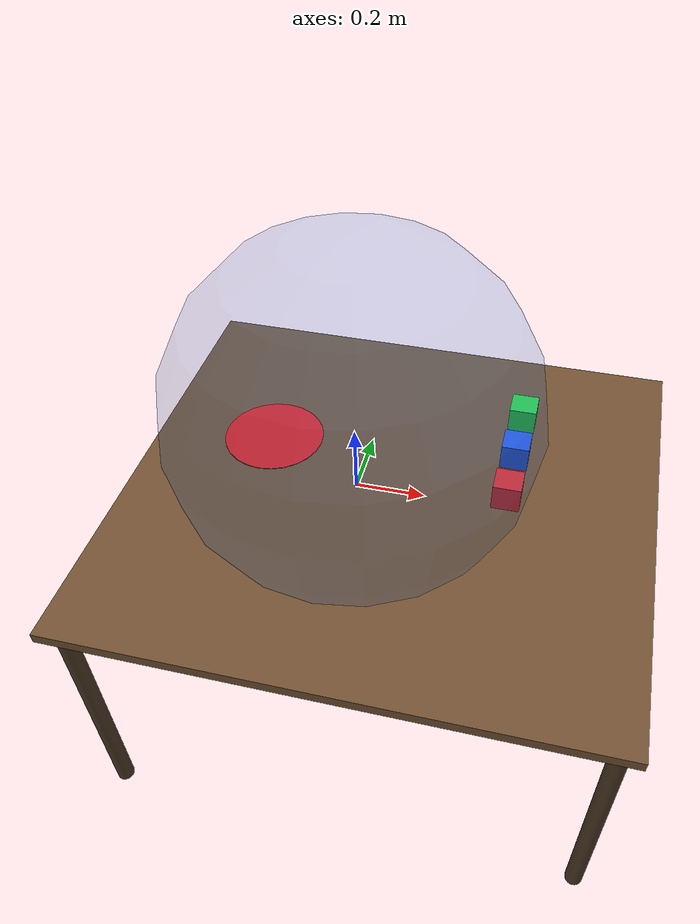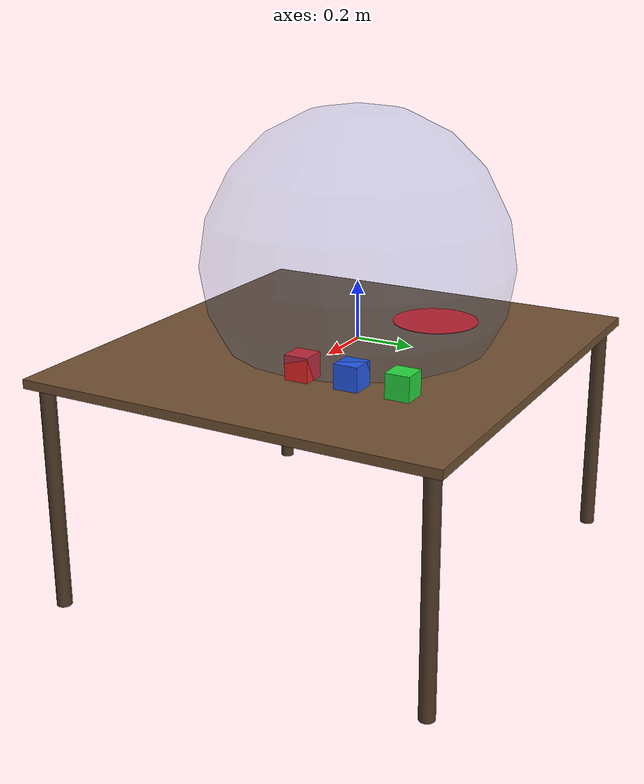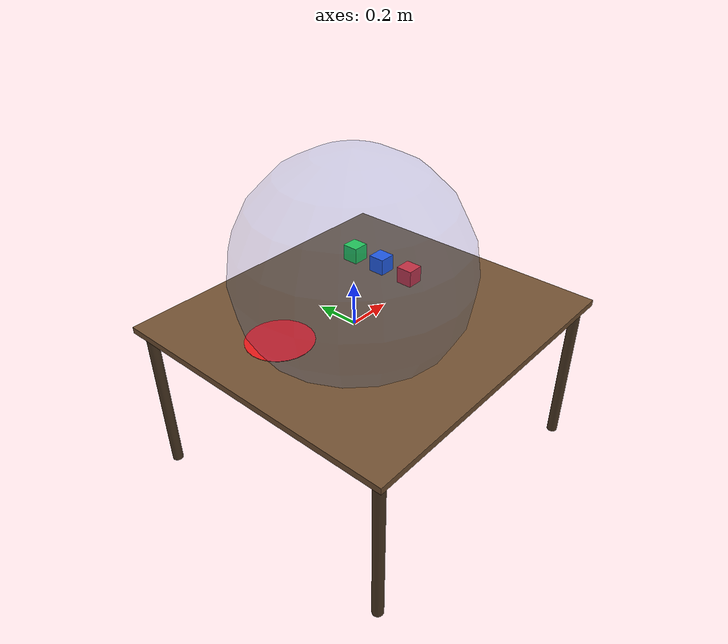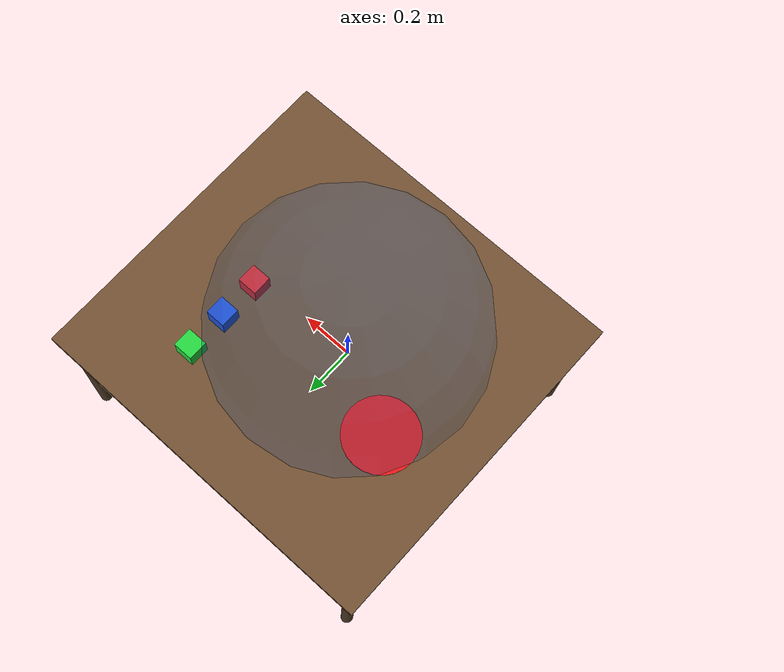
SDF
<?xml version="1.0" ?>
<sdf version="1.6">
  <world name="intention_workstation">

    <light type="directional" name="sun">
      <cast_shadows>true</cast_shadows>
      <pose>0 0 10 0 0 0</pose>
      <diffuse>0.9 0.9 0.9 1</diffuse>
      <specular>0.3 0.3 0.3 1</specular>
      <direction>-0.5 0.1 -0.9</direction>
    </light>

    <light type="point" name="fill_light">
      <pose>0.5 0.5 1.5 0 0 0</pose>
      <diffuse>0.4 0.4 0.45 1</diffuse>
      <specular>0.1 0.1 0.1 1</specular>
      <attenuation>
        <range>5</range>
        <constant>0.5</constant>
        <linear>0.1</linear>
        <quadratic>0.01</quadratic>
      </attenuation>
    </light>

    <!-- Ground with collision so objects don't fall forever -->
    <!-- Ground — collision only (invisible) so objects don't fall -->
    <model name="ground_plane">
      <static>true</static>
      <link name="link">
        <collision name="collision">
          <geometry><plane><normal>0 0 1</normal><size>5 5</size></plane></geometry>
          <surface>
            <friction>
              <ode><mu>100</mu><mu2>50</mu2></ode>
            </friction>
          </surface>
        </collision>
      </link>
    </model>

    <!-- Table                                        -->
    <model name="workstation_table">
      <static>true</static>
      <pose>0.10 0.0 0 0 0 0</pose>
      <!-- Table top -->
      <link name="surface">
        <pose>0 0 -0.015 0 0 0</pose>
        <visual name="visual">
          <geometry><box><size>1.5 1.4 0.03</size></box></geometry>
          <material>
            <ambient>0.35 0.25 0.15 1</ambient>
            <diffuse>0.45 0.32 0.20 1</diffuse>
            <specular>0.15 0.12 0.08 1</specular>
          </material>
        </visual>
        <collision name="collision">
          <geometry><box><size>1.5 1.4 0.03</size></box></geometry>
          <surface>
            <friction>
              <ode><mu>100</mu><mu2>50</mu2></ode>
            </friction>
          </surface>
        </collision>
      </link>
      <!-- Legs -->
      <link name="leg_fl">
        <pose>0.70 0.65 -0.40 0 0 0</pose>
        <visual name="v"><geometry><cylinder><radius>0.025</radius><length>0.77</length></cylinder></geometry>
          <material><ambient>0.25 0.18 0.10 1</ambient><diffuse>0.30 0.22 0.14 1</diffuse></material></visual>
      </link>
      <link name="leg_fr">
        <pose>0.70 -0.65 -0.40 0 0 0</pose>
        <visual name="v"><geometry><cylinder><radius>0.025</radius><length>0.77</length></cylinder></geometry>
          <material><ambient>0.25 0.18 0.10 1</ambient><diffuse>0.30 0.22 0.14 1</diffuse></material></visual>
      </link>
      <link name="leg_bl">
        <pose>-0.70 0.65 -0.40 0 0 0</pose>
        <visual name="v"><geometry><cylinder><radius>0.025</radius><length>0.77</length></cylinder></geometry>
          <material><ambient>0.25 0.18 0.10 1</ambient><diffuse>0.30 0.22 0.14 1</diffuse></material></visual>
      </link>
      <link name="leg_br">
        <pose>-0.70 -0.65 -0.40 0 0 0</pose>
        <visual name="v"><geometry><cylinder><radius>0.025</radius><length>0.77</length></cylinder></geometry>
          <material><ambient>0.25 0.18 0.10 1</ambient><diffuse>0.30 0.22 0.14 1</diffuse></material></visual>
      </link>
    </model>

    <!-- Red Cube  (~8 cm cube)                       -->

    <model name="red_cube">
      <static>false</static>
      <pose>0.43 0.04 0.04 0 0 0</pose>
      <link name="body">
        <inertial>
          <mass>0.15</mass>
          <inertia>
            <ixx>0.000016</ixx><iyy>0.000016</iyy><izz>0.000016</izz>
            <ixy>0</ixy><ixz>0</ixz><iyz>0</iyz>
          </inertia>
        </inertial>
        <visual name="visual">
          <geometry><box><size>0.08 0.08 0.08</size></box></geometry>
          <material>
            <ambient>0.85 0.12 0.12 1</ambient>
            <diffuse>0.92 0.15 0.15 1</diffuse>
            <specular>0.3 0.1 0.1 1</specular>
          </material>
        </visual>
        <collision name="collision">
          <geometry><box><size>0.08 0.08 0.08</size></box></geometry>
          <surface>
            <contact><ode><kp>100000</kp><kd>10</kd><max_vel>0.1</max_vel><min_depth>0.001</min_depth></ode></contact>
            <bounce><restitution_coefficient>0.0</restitution_coefficient></bounce>
            <friction><ode><mu>100.0</mu><mu2>100.0</mu2></ode></friction>
          </surface>
        </collision>
      </link>
    </model>

    <!-- Blue Cube  (~8 cm cube)                      -->
    <model name="blue_cube">
      <static>false</static>
      <pose>0.43 0.21 0.04 0 0 0</pose>
      <link name="body">
        <inertial>
          <mass>0.15</mass>
          <inertia>
            <ixx>0.000016</ixx><iyy>0.000016</iyy><izz>0.000016</izz>
            <ixy>0</ixy><ixz>0</ixz><iyz>0</iyz>
          </inertia>
        </inertial>
        <visual name="visual">
          <geometry><box><size>0.08 0.08 0.08</size></box></geometry>
          <material>
            <ambient>0.1 0.3 0.85 1</ambient>
            <diffuse>0.15 0.35 0.92 1</diffuse>
            <specular>0.1 0.1 0.3 1</specular>
          </material>
        </visual>
        <collision name="collision">
          <geometry><box><size>0.08 0.08 0.08</size></box></geometry>
          <surface>
            <contact><ode><kp>100000</kp><kd>10</kd><max_vel>0.1</max_vel><min_depth>0.001</min_depth></ode></contact>
            <bounce><restitution_coefficient>0.0</restitution_coefficient></bounce>
            <friction><ode><mu>100.0</mu><mu2>100.0</mu2></ode></friction>
          </surface>
        </collision>
      </link>
    </model>

    <!-- Green Cube  (~8 cm cube)                     -->
    <model name="green_cube">
      <static>false</static>
      <pose>0.43 0.38 0.04 0 0 0</pose>
      <link name="body">
        <inertial>
          <mass>0.15</mass>
          <inertia>
            <ixx>0.000016</ixx><iyy>0.000016</iyy><izz>0.000016</izz>
            <ixy>0</ixy><ixz>0</ixz><iyz>0</iyz>
          </inertia>
        </inertial>
        <visual name="visual">
          <geometry><box><size>0.08 0.08 0.08</size></box></geometry>
          <material>
            <ambient>0.1 0.75 0.2 1</ambient>
            <diffuse>0.15 0.85 0.25 1</diffuse>
            <specular>0.1 0.2 0.1 1</specular>
          </material>
        </visual>
        <collision name="collision">
          <geometry><box><size>0.08 0.08 0.08</size></box></geometry>
          <surface>
            <contact><ode><kp>100000</kp><kd>10</kd><max_vel>0.1</max_vel><min_depth>0.001</min_depth></ode></contact>
            <bounce><restitution_coefficient>0.0</restitution_coefficient></bounce>
            <friction><ode><mu>100.0</mu><mu2>100.0</mu2></ode></friction>
          </surface>
        </collision>
      </link>
    </model>

    <!-- Hazard zones — visual-only red discs         -->
    <model name="hazard_delivery_guard">
      <static>true</static>
      <pose>-0.30 0.15 0.001 0 0 0</pose>
      <link name="zone">
        <visual name="visual">
          <geometry><cylinder><radius>0.15</radius><length>0.002</length></cylinder></geometry>
          <material>
            <ambient>0.8 0.0 0.0 1</ambient>
            <diffuse>0.9 0.1 0.1 1</diffuse>
          </material>
        </visual>
      </link>
    </model>

    <gui fullscreen="0">
      <camera name="user_camera">
        <pose>1.3 0.0 0.75 0 0.25 3.14</pose>
      </camera>
    </gui>

    <physics type="ode">
      <max_step_size>0.001</max_step_size>
      <real_time_factor>1.0</real_time_factor>
      <real_time_update_rate>1000</real_time_update_rate>
      <ode>
        <constraints>
          <!-- Limit how fast Gazebo corrects penetration — prevents explosive launches -->
          <contact_max_correcting_vel>0.2</contact_max_correcting_vel>
          <!-- Allow 1mm surface overlap before applying contact force -->
          <contact_surface_layer>0.001</contact_surface_layer>
        </constraints>
      </ode>
    </physics>

    <!-- Reach Bubble — semi-transparent workspace    -->
    <!-- sphere centred on the robot base (0,0,0).    -->
    <!-- Visual only, no collision. Radius = 0.52 m   -->
    <!-- matching the UR3 MAX_REACH.                  -->
    <model name="reach_bubble">
      <static>true</static>
      <pose>0 0 0.26 0 0 0</pose>
      <link name="bubble_link">
        <visual name="bubble_visual">
          <geometry>
            <sphere><radius>0.52</radius></sphere>
          </geometry>
          <material>
            <ambient>0.1 0.4 0.8 1</ambient>
            <diffuse>0.1 0.4 0.8 1</diffuse>
            <specular>0.2 0.2 0.2 1</specular>
          </material>
          <transparency>0.92</transparency>
        </visual>
        <!-- No collision — visual only -->
      </link>
    </model>

    <!-- Gazebo ROS State plugin (WORLD plugin)       -->
    <!-- Provides /gazebo/set_entity_state service    -->
    <!-- needed for virtual object attach during fetch -->

    <plugin name="gazebo_ros_state" filename="libgazebo_ros_state.so">
      <ros>
        <namespace>/</namespace>
      </ros>
      <update_rate>50</update_rate>
    </plugin>

    <!-- IFRA LinkAttacher — native fixed-joint grasp -->
    <!-- Creates /ATTACHLINK and /DETACHLINK services -->

    <plugin name="gazebo_link_attacher" filename="libgazebo_link_attacher.so"/>

  </world>
</sdf>
